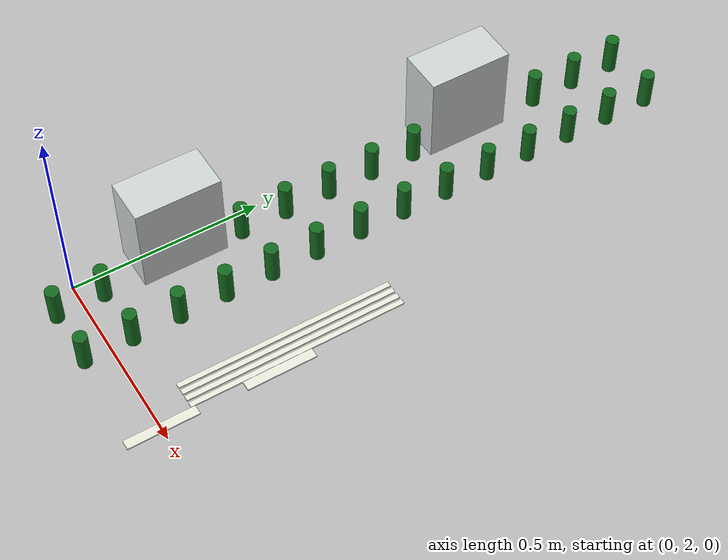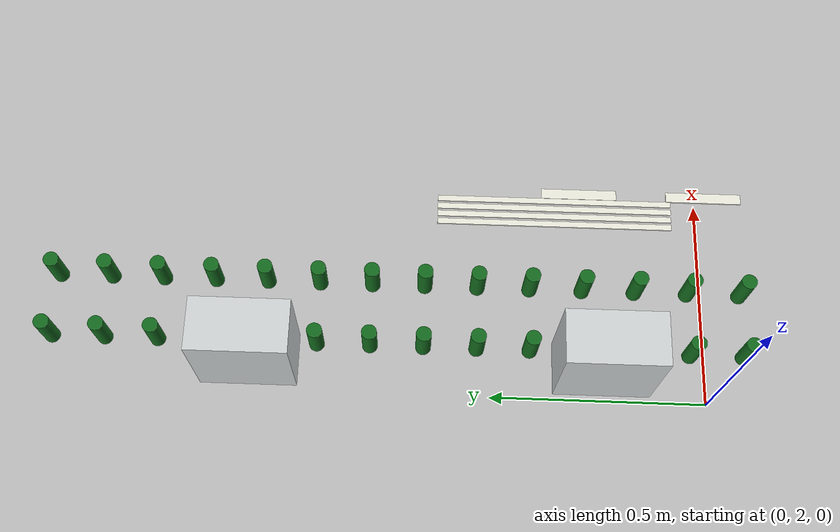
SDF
<sdf version="1.7">
 <world name="nexus_sandbox_imx219">
  <model name="LM-RING-W-05">
   <static>true</static>
   <pose>0.5 1.9900000000000002 0.05450000000000001 0 0 0</pose>
   <link name="link">
    <collision name="collision"><geometry><box><size>0.025 0.18 0.004</size></box></geometry></collision>
    <visual name="visual">
     <geometry><box><size>0.025 0.18 0.004</size></box></geometry>
     <material><ambient>0.93 0.93 0.88 1</ambient><diffuse>0.93 0.93 0.88 1</diffuse></material>
    </visual>
   </link>
  </model>
  <model name="LM-RING-W-06">
   <static>true</static>
   <pose>0.5 2.29 0.05450000000000001 0 0 0</pose>
   <link name="link">
    <collision name="collision"><geometry><box><size>0.025 0.18 0.004</size></box></geometry></collision>
    <visual name="visual">
     <geometry><box><size>0.025 0.18 0.004</size></box></geometry>
     <material><ambient>0.93 0.93 0.88 1</ambient><diffuse>0.93 0.93 0.88 1</diffuse></material>
    </visual>
   </link>
  </model>
  <model name="CW-C-W-01">
   <static>true</static>
   <pose>0.42 2.35 0.05450000000000001 0 0 0</pose>
   <link name="link">
    <collision name="collision"><geometry><box><size>0.014 0.56 0.004</size></box></geometry></collision>
    <visual name="visual">
     <geometry><box><size>0.014 0.56 0.004</size></box></geometry>
     <material><ambient>0.93 0.93 0.88 1</ambient><diffuse>0.93 0.93 0.88 1</diffuse></material>
    </visual>
   </link>
  </model>
  <model name="CW-C-W-02">
   <static>true</static>
   <pose>0.44 2.35 0.05450000000000001 0 0 0</pose>
   <link name="link">
    <collision name="collision"><geometry><box><size>0.014 0.56 0.004</size></box></geometry></collision>
    <visual name="visual">
     <geometry><box><size>0.014 0.56 0.004</size></box></geometry>
     <material><ambient>0.93 0.93 0.88 1</ambient><diffuse>0.93 0.93 0.88 1</diffuse></material>
    </visual>
   </link>
  </model>
  <model name="CW-C-W-03">
   <static>true</static>
   <pose>0.46 2.35 0.05450000000000001 0 0 0</pose>
   <link name="link">
    <collision name="collision"><geometry><box><size>0.014 0.56 0.004</size></box></geometry></collision>
    <visual name="visual">
     <geometry><box><size>0.014 0.56 0.004</size></box></geometry>
     <material><ambient>0.93 0.93 0.88 1</ambient><diffuse>0.93 0.93 0.88 1</diffuse></material>
    </visual>
   </link>
  </model>
  <model name="CW-C-W-04">
   <static>true</static>
   <pose>0.48 2.35 0.05450000000000001 0 0 0</pose>
   <link name="link">
    <collision name="collision"><geometry><box><size>0.014 0.56 0.004</size></box></geometry></collision>
    <visual name="visual">
     <geometry><box><size>0.014 0.56 0.004</size></box></geometry>
     <material><ambient>0.93 0.93 0.88 1</ambient><diffuse>0.93 0.93 0.88 1</diffuse></material>
    </visual>
   </link>
  </model>
  <model name="BLD-L02">
   <static>true</static>
   <pose>0.06 2.25 0.16999999999999998 0 0 0</pose>
   <link name="link">
    <collision name="collision"><geometry><box><size>0.12 0.22 0.24</size></box></geometry></collision>
    <visual name="visual">
     <geometry><box><size>0.12 0.22 0.24</size></box></geometry>
     <material><ambient>0.82 0.84 0.84 1</ambient><diffuse>0.82 0.84 0.84 1</diffuse></material>
    </visual>
   </link>
  </model>
  <model name="BLD-L03">
   <static>true</static>
   <pose>0.06 3.0500000000000003 0.16999999999999998 0 0 0</pose>
   <link name="link">
    <collision name="collision"><geometry><box><size>0.12 0.22 0.24</size></box></geometry></collision>
    <visual name="visual">
     <geometry><box><size>0.12 0.22 0.24</size></box></geometry>
     <material><ambient>0.82 0.84 0.84 1</ambient><diffuse>0.82 0.84 0.84 1</diffuse></material>
    </visual>
   </link>
  </model>
  <model name="TR-L01-11">
   <static>true</static>
   <pose>0.1 1.922222222222222 0.1 0 0 0</pose>
   <link name="link">
    <collision name="collision">
     <geometry><cylinder><radius>0.0175</radius><length>0.1</length></cylinder></geometry>
    </collision>
    <visual name="visual">
     <geometry><cylinder><radius>0.0175</radius><length>0.1</length></cylinder></geometry>
     <material><ambient>0.08 0.42 0.12 1</ambient><diffuse>0.08 0.42 0.12 1</diffuse></material>
    </visual>
   </link>
  </model>
  <model name="TR-L01-12">
   <static>true</static>
   <pose>0.1 2.0444444444444443 0.1 0 0 0</pose>
   <link name="link">
    <collision name="collision">
     <geometry><cylinder><radius>0.0175</radius><length>0.1</length></cylinder></geometry>
    </collision>
    <visual name="visual">
     <geometry><cylinder><radius>0.0175</radius><length>0.1</length></cylinder></geometry>
     <material><ambient>0.08 0.42 0.12 1</ambient><diffuse>0.08 0.42 0.12 1</diffuse></material>
    </visual>
   </link>
  </model>
  <model name="TR-L01-13">
   <static>true</static>
   <pose>0.1 2.1666666666666665 0.1 0 0 0</pose>
   <link name="link">
    <collision name="collision">
     <geometry><cylinder><radius>0.0175</radius><length>0.1</length></cylinder></geometry>
    </collision>
    <visual name="visual">
     <geometry><cylinder><radius>0.0175</radius><length>0.1</length></cylinder></geometry>
     <material><ambient>0.08 0.42 0.12 1</ambient><diffuse>0.08 0.42 0.12 1</diffuse></material>
    </visual>
   </link>
  </model>
  <model name="TR-L01-14">
   <static>true</static>
   <pose>0.1 2.2888888888888888 0.1 0 0 0</pose>
   <link name="link">
    <collision name="collision">
     <geometry><cylinder><radius>0.0175</radius><length>0.1</length></cylinder></geometry>
    </collision>
    <visual name="visual">
     <geometry><cylinder><radius>0.0175</radius><length>0.1</length></cylinder></geometry>
     <material><ambient>0.08 0.42 0.12 1</ambient><diffuse>0.08 0.42 0.12 1</diffuse></material>
    </visual>
   </link>
  </model>
  <model name="TR-L01-15">
   <static>true</static>
   <pose>0.1 2.411111111111111 0.1 0 0 0</pose>
   <link name="link">
    <collision name="collision">
     <geometry><cylinder><radius>0.0175</radius><length>0.1</length></cylinder></geometry>
    </collision>
    <visual name="visual">
     <geometry><cylinder><radius>0.0175</radius><length>0.1</length></cylinder></geometry>
     <material><ambient>0.08 0.42 0.12 1</ambient><diffuse>0.08 0.42 0.12 1</diffuse></material>
    </visual>
   </link>
  </model>
  <model name="TR-L01-16">
   <static>true</static>
   <pose>0.1 2.533333333333333 0.1 0 0 0</pose>
   <link name="link">
    <collision name="collision">
     <geometry><cylinder><radius>0.0175</radius><length>0.1</length></cylinder></geometry>
    </collision>
    <visual name="visual">
     <geometry><cylinder><radius>0.0175</radius><length>0.1</length></cylinder></geometry>
     <material><ambient>0.08 0.42 0.12 1</ambient><diffuse>0.08 0.42 0.12 1</diffuse></material>
    </visual>
   </link>
  </model>
  <model name="TR-L01-17">
   <static>true</static>
   <pose>0.1 2.6555555555555554 0.1 0 0 0</pose>
   <link name="link">
    <collision name="collision">
     <geometry><cylinder><radius>0.0175</radius><length>0.1</length></cylinder></geometry>
    </collision>
    <visual name="visual">
     <geometry><cylinder><radius>0.0175</radius><length>0.1</length></cylinder></geometry>
     <material><ambient>0.08 0.42 0.12 1</ambient><diffuse>0.08 0.42 0.12 1</diffuse></material>
    </visual>
   </link>
  </model>
  <model name="TR-L01-18">
   <static>true</static>
   <pose>0.1 2.777777777777778 0.1 0 0 0</pose>
   <link name="link">
    <collision name="collision">
     <geometry><cylinder><radius>0.0175</radius><length>0.1</length></cylinder></geometry>
    </collision>
    <visual name="visual">
     <geometry><cylinder><radius>0.0175</radius><length>0.1</length></cylinder></geometry>
     <material><ambient>0.08 0.42 0.12 1</ambient><diffuse>0.08 0.42 0.12 1</diffuse></material>
    </visual>
   </link>
  </model>
  <model name="TR-L01-19">
   <static>true</static>
   <pose>0.1 2.9 0.1 0 0 0</pose>
   <link name="link">
    <collision name="collision">
     <geometry><cylinder><radius>0.0175</radius><length>0.1</length></cylinder></geometry>
    </collision>
    <visual name="visual">
     <geometry><cylinder><radius>0.0175</radius><length>0.1</length></cylinder></geometry>
     <material><ambient>0.08 0.42 0.12 1</ambient><diffuse>0.08 0.42 0.12 1</diffuse></material>
    </visual>
   </link>
  </model>
  <model name="TR-L01-20">
   <static>true</static>
   <pose>0.1 3.022222222222222 0.1 0 0 0</pose>
   <link name="link">
    <collision name="collision">
     <geometry><cylinder><radius>0.0175</radius><length>0.1</length></cylinder></geometry>
    </collision>
    <visual name="visual">
     <geometry><cylinder><radius>0.0175</radius><length>0.1</length></cylinder></geometry>
     <material><ambient>0.08 0.42 0.12 1</ambient><diffuse>0.08 0.42 0.12 1</diffuse></material>
    </visual>
   </link>
  </model>
  <model name="TR-L01-21">
   <static>true</static>
   <pose>0.1 3.1444444444444444 0.1 0 0 0</pose>
   <link name="link">
    <collision name="collision">
     <geometry><cylinder><radius>0.0175</radius><length>0.1</length></cylinder></geometry>
    </collision>
    <visual name="visual">
     <geometry><cylinder><radius>0.0175</radius><length>0.1</length></cylinder></geometry>
     <material><ambient>0.08 0.42 0.12 1</ambient><diffuse>0.08 0.42 0.12 1</diffuse></material>
    </visual>
   </link>
  </model>
  <model name="TR-L01-22">
   <static>true</static>
   <pose>0.1 3.2666666666666666 0.1 0 0 0</pose>
   <link name="link">
    <collision name="collision">
     <geometry><cylinder><radius>0.0175</radius><length>0.1</length></cylinder></geometry>
    </collision>
    <visual name="visual">
     <geometry><cylinder><radius>0.0175</radius><length>0.1</length></cylinder></geometry>
     <material><ambient>0.08 0.42 0.12 1</ambient><diffuse>0.08 0.42 0.12 1</diffuse></material>
    </visual>
   </link>
  </model>
  <model name="TR-L01-23">
   <static>true</static>
   <pose>0.1 3.388888888888889 0.1 0 0 0</pose>
   <link name="link">
    <collision name="collision">
     <geometry><cylinder><radius>0.0175</radius><length>0.1</length></cylinder></geometry>
    </collision>
    <visual name="visual">
     <geometry><cylinder><radius>0.0175</radius><length>0.1</length></cylinder></geometry>
     <material><ambient>0.08 0.42 0.12 1</ambient><diffuse>0.08 0.42 0.12 1</diffuse></material>
    </visual>
   </link>
  </model>
  <model name="TR-L01-24">
   <static>true</static>
   <pose>0.1 3.511111111111111 0.1 0 0 0</pose>
   <link name="link">
    <collision name="collision">
     <geometry><cylinder><radius>0.0175</radius><length>0.1</length></cylinder></geometry>
    </collision>
    <visual name="visual">
     <geometry><cylinder><radius>0.0175</radius><length>0.1</length></cylinder></geometry>
     <material><ambient>0.08 0.42 0.12 1</ambient><diffuse>0.08 0.42 0.12 1</diffuse></material>
    </visual>
   </link>
  </model>
  <model name="TR-L02-11">
   <static>true</static>
   <pose>0.25 1.922222222222222 0.1 0 0 0</pose>
   <link name="link">
    <collision name="collision">
     <geometry><cylinder><radius>0.0175</radius><length>0.1</length></cylinder></geometry>
    </collision>
    <visual name="visual">
     <geometry><cylinder><radius>0.0175</radius><length>0.1</length></cylinder></geometry>
     <material><ambient>0.08 0.42 0.12 1</ambient><diffuse>0.08 0.42 0.12 1</diffuse></material>
    </visual>
   </link>
  </model>
  <model name="TR-L02-12">
   <static>true</static>
   <pose>0.25 2.0444444444444443 0.1 0 0 0</pose>
   <link name="link">
    <collision name="collision">
     <geometry><cylinder><radius>0.0175</radius><length>0.1</length></cylinder></geometry>
    </collision>
    <visual name="visual">
     <geometry><cylinder><radius>0.0175</radius><length>0.1</length></cylinder></geometry>
     <material><ambient>0.08 0.42 0.12 1</ambient><diffuse>0.08 0.42 0.12 1</diffuse></material>
    </visual>
   </link>
  </model>
  <model name="TR-L02-13">
   <static>true</static>
   <pose>0.25 2.1666666666666665 0.1 0 0 0</pose>
   <link name="link">
    <collision name="collision">
     <geometry><cylinder><radius>0.0175</radius><length>0.1</length></cylinder></geometry>
    </collision>
    <visual name="visual">
     <geometry><cylinder><radius>0.0175</radius><length>0.1</length></cylinder></geometry>
     <material><ambient>0.08 0.42 0.12 1</ambient><diffuse>0.08 0.42 0.12 1</diffuse></material>
    </visual>
   </link>
  </model>
  <model name="TR-L02-14">
   <static>true</static>
   <pose>0.25 2.2888888888888888 0.1 0 0 0</pose>
   <link name="link">
    <collision name="collision">
     <geometry><cylinder><radius>0.0175</radius><length>0.1</length></cylinder></geometry>
    </collision>
    <visual name="visual">
     <geometry><cylinder><radius>0.0175</radius><length>0.1</length></cylinder></geometry>
     <material><ambient>0.08 0.42 0.12 1</ambient><diffuse>0.08 0.42 0.12 1</diffuse></material>
    </visual>
   </link>
  </model>
  <model name="TR-L02-15">
   <static>true</static>
   <pose>0.25 2.411111111111111 0.1 0 0 0</pose>
   <link name="link">
    <collision name="collision">
     <geometry><cylinder><radius>0.0175</radius><length>0.1</length></cylinder></geometry>
    </collision>
    <visual name="visual">
     <geometry><cylinder><radius>0.0175</radius><length>0.1</length></cylinder></geometry>
     <material><ambient>0.08 0.42 0.12 1</ambient><diffuse>0.08 0.42 0.12 1</diffuse></material>
    </visual>
   </link>
  </model>
  <model name="TR-L02-16">
   <static>true</static>
   <pose>0.25 2.533333333333333 0.1 0 0 0</pose>
   <link name="link">
    <collision name="collision">
     <geometry><cylinder><radius>0.0175</radius><length>0.1</length></cylinder></geometry>
    </collision>
    <visual name="visual">
     <geometry><cylinder><radius>0.0175</radius><length>0.1</length></cylinder></geometry>
     <material><ambient>0.08 0.42 0.12 1</ambient><diffuse>0.08 0.42 0.12 1</diffuse></material>
    </visual>
   </link>
  </model>
  <model name="TR-L02-17">
   <static>true</static>
   <pose>0.25 2.6555555555555554 0.1 0 0 0</pose>
   <link name="link">
    <collision name="collision">
     <geometry><cylinder><radius>0.0175</radius><length>0.1</length></cylinder></geometry>
    </collision>
    <visual name="visual">
     <geometry><cylinder><radius>0.0175</radius><length>0.1</length></cylinder></geometry>
     <material><ambient>0.08 0.42 0.12 1</ambient><diffuse>0.08 0.42 0.12 1</diffuse></material>
    </visual>
   </link>
  </model>
  <model name="TR-L02-18">
   <static>true</static>
   <pose>0.25 2.777777777777778 0.1 0 0 0</pose>
   <link name="link">
    <collision name="collision">
     <geometry><cylinder><radius>0.0175</radius><length>0.1</length></cylinder></geometry>
    </collision>
    <visual name="visual">
     <geometry><cylinder><radius>0.0175</radius><length>0.1</length></cylinder></geometry>
     <material><ambient>0.08 0.42 0.12 1</ambient><diffuse>0.08 0.42 0.12 1</diffuse></material>
    </visual>
   </link>
  </model>
  <model name="TR-L02-19">
   <static>true</static>
   <pose>0.25 2.9 0.1 0 0 0</pose>
   <link name="link">
    <collision name="collision">
     <geometry><cylinder><radius>0.0175</radius><length>0.1</length></cylinder></geometry>
    </collision>
    <visual name="visual">
     <geometry><cylinder><radius>0.0175</radius><length>0.1</length></cylinder></geometry>
     <material><ambient>0.08 0.42 0.12 1</ambient><diffuse>0.08 0.42 0.12 1</diffuse></material>
    </visual>
   </link>
  </model>
  <model name="TR-L02-20">
   <static>true</static>
   <pose>0.25 3.022222222222222 0.1 0 0 0</pose>
   <link name="link">
    <collision name="collision">
     <geometry><cylinder><radius>0.0175</radius><length>0.1</length></cylinder></geometry>
    </collision>
    <visual name="visual">
     <geometry><cylinder><radius>0.0175</radius><length>0.1</length></cylinder></geometry>
     <material><ambient>0.08 0.42 0.12 1</ambient><diffuse>0.08 0.42 0.12 1</diffuse></material>
    </visual>
   </link>
  </model>
  <model name="TR-L02-21">
   <static>true</static>
   <pose>0.25 3.1444444444444444 0.1 0 0 0</pose>
   <link name="link">
    <collision name="collision">
     <geometry><cylinder><radius>0.0175</radius><length>0.1</length></cylinder></geometry>
    </collision>
    <visual name="visual">
     <geometry><cylinder><radius>0.0175</radius><length>0.1</length></cylinder></geometry>
     <material><ambient>0.08 0.42 0.12 1</ambient><diffuse>0.08 0.42 0.12 1</diffuse></material>
    </visual>
   </link>
  </model>
  <model name="TR-L02-22">
   <static>true</static>
   <pose>0.25 3.2666666666666666 0.1 0 0 0</pose>
   <link name="link">
    <collision name="collision">
     <geometry><cylinder><radius>0.0175</radius><length>0.1</length></cylinder></geometry>
    </collision>
    <visual name="visual">
     <geometry><cylinder><radius>0.0175</radius><length>0.1</length></cylinder></geometry>
     <material><ambient>0.08 0.42 0.12 1</ambient><diffuse>0.08 0.42 0.12 1</diffuse></material>
    </visual>
   </link>
  </model>
  <model name="TR-L02-23">
   <static>true</static>
   <pose>0.25 3.388888888888889 0.1 0 0 0</pose>
   <link name="link">
    <collision name="collision">
     <geometry><cylinder><radius>0.0175</radius><length>0.1</length></cylinder></geometry>
    </collision>
    <visual name="visual">
     <geometry><cylinder><radius>0.0175</radius><length>0.1</length></cylinder></geometry>
     <material><ambient>0.08 0.42 0.12 1</ambient><diffuse>0.08 0.42 0.12 1</diffuse></material>
    </visual>
   </link>
  </model>
  <model name="TR-L02-24">
   <static>true</static>
   <pose>0.25 3.511111111111111 0.1 0 0 0</pose>
   <link name="link">
    <collision name="collision">
     <geometry><cylinder><radius>0.0175</radius><length>0.1</length></cylinder></geometry>
    </collision>
    <visual name="visual">
     <geometry><cylinder><radius>0.0175</radius><length>0.1</length></cylinder></geometry>
     <material><ambient>0.08 0.42 0.12 1</ambient><diffuse>0.08 0.42 0.12 1</diffuse></material>
    </visual>
   </link>
  </model>
 </world>
</sdf>
